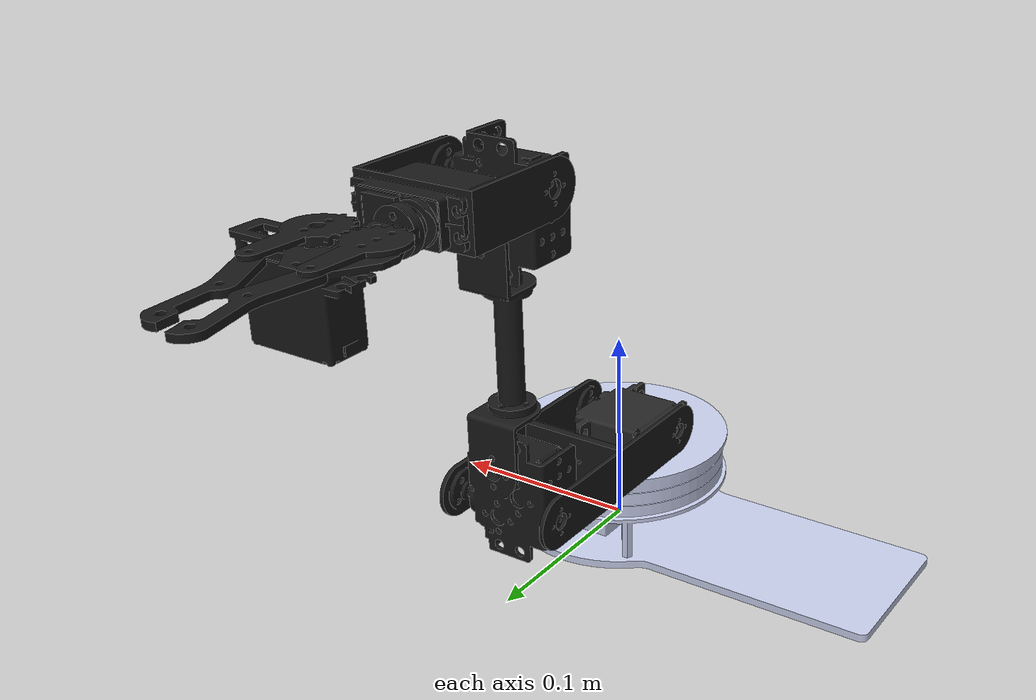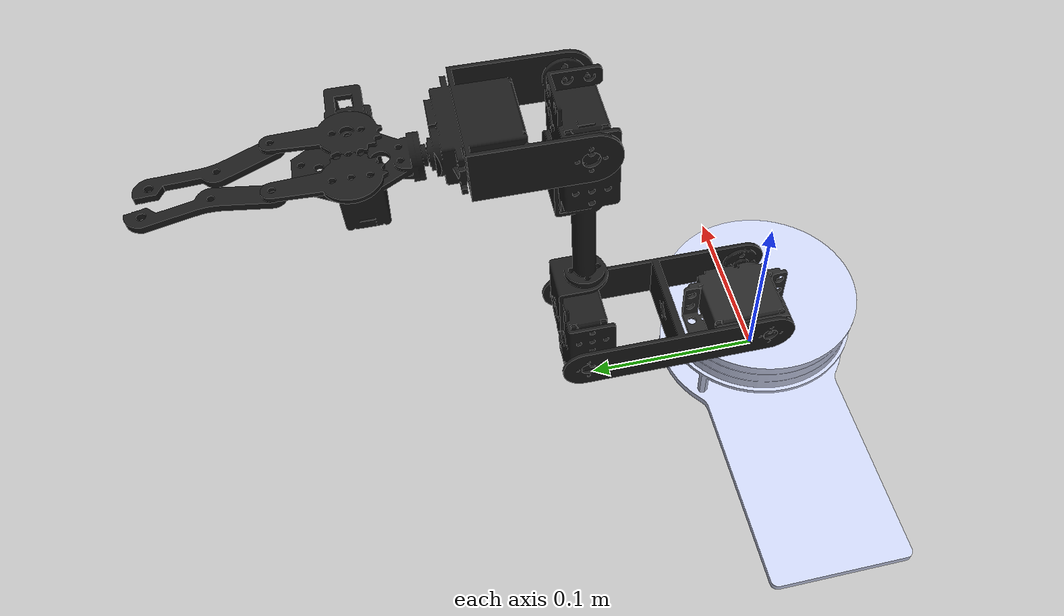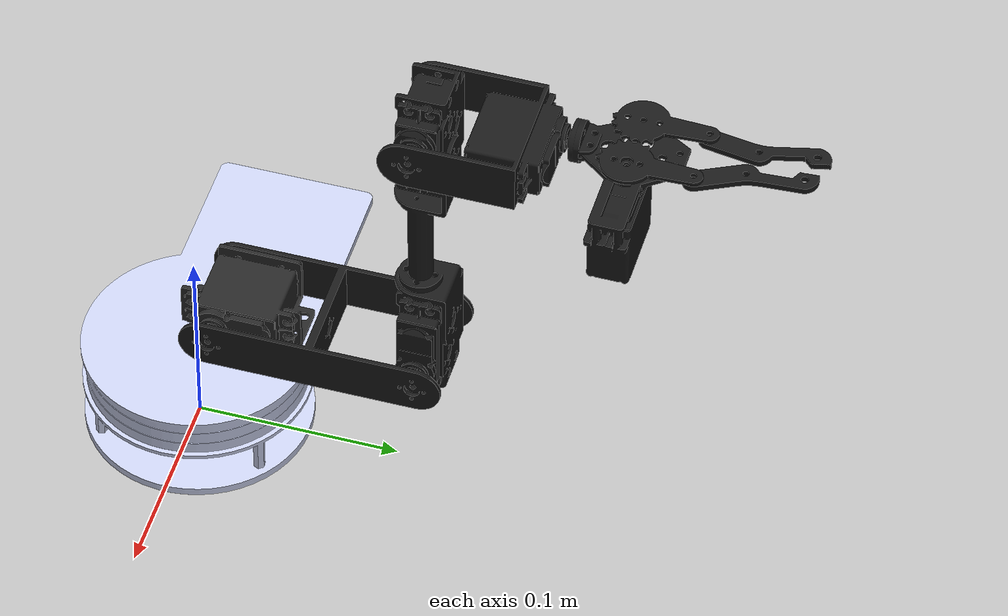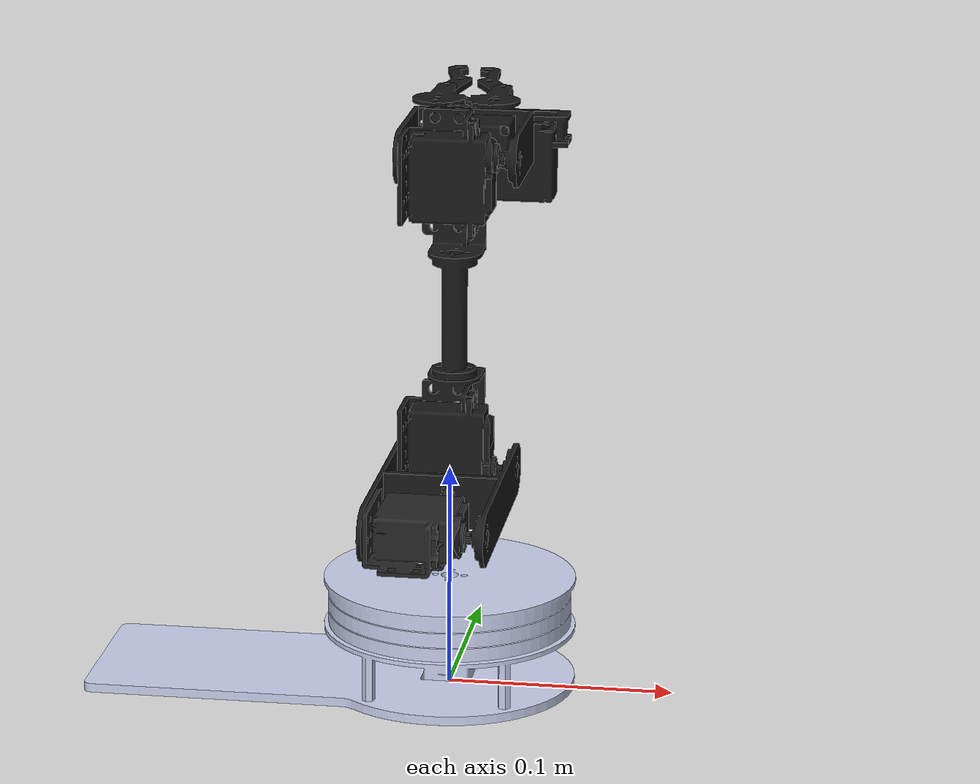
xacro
<?xml version="1.0"?>
<robot xmlns:xacro="http://www.ros.org/wiki/xacro" name="myrobot">
    <xacro:arg name="initial_positions_file" default="initial_positions.yaml" />

    <xacro:arg name="is_sim" default="false"/>

    <!-- Import myrobot urdf file -->
    <xacro:include filename="$(find myrobot_description)/urdf/myrobot.urdf.xacro" />

    <!-- Import control_xacro -->
    <xacro:include filename="myrobot.ros2_control.xacro" />

    <xacro:myrobot_ros2_control name="myrobot" initial_positions_file="$(arg initial_positions_file)"/>

</robot>

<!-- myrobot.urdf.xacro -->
<robot xmlns:xacro="http://www.ros.org/wiki/xacro" name="myrobot">

    <xacro:property name="PI" value="3.14159265359" />

    <xacro:macro name="default_transmission" params="number">
        <transmission name="transimission_${number}">
            <plugin>transmission_interface/SimpleTransmission</plugin>
            <actuator name="motor_${number}" role="actuator1" />
            <joint name="joint_${number}" role="joint1" >
                <mechanical_reduction>1.0</mechanical_reduction>
            </joint>
        </transmission>
    </xacro:macro>

    <link name="world"/>

    <link name="base_link">
        <inertial>
            <origin xyz="0 0 0" rpy="0 0 0" />
            <mass value="0.19" />
            <inertia ixx="1.0" ixy="0.0" ixz="0.0" iyy="1.0" iyz="0.0" izz="1.0" />
        </inertial>
        <visual>
            <origin xyz="0 0 0" rpy="-1.5708 0 0" />
            <geometry>
                <mesh filename="package://myrobot_description/meshes/base_link.STL" />
            </geometry>
            <material name="">
                <color rgba="0.79216 0.81961 0.93333 1" />
            </material>
        </visual>
        <collision>
            <origin xyz="0 0 0" rpy="-1.5708 0 0" />
            <geometry>
                <mesh filename="package://myrobot_description/meshes/base_link.STL" />
            </geometry>
        </collision>
    </link>

    <joint name="virtual_joint" type="fixed">
        <parent link="world"/>
        <child link="base_link"/>
        <origin xyz="0 0 0" rpy="0 0 0"/>
    </joint>

    <link name="link_1">
        <inertial>
            <origin xyz="0 0 0" rpy="0 0 0" />
            <mass value="0.05" />
            <inertia ixx="1.0" ixy="0.0" ixz="0.0" iyy="1.0" iyz="0.0" izz="1.0" />
        </inertial>
        <visual>
            <origin xyz="0 0 0" rpy="0 0 0" />
            <geometry>
                <mesh filename="package://myrobot_description/meshes/link1.STL" />
            </geometry>
            <material name="">
                <color rgba="0.15 0.15 0.15 1" />
            </material>
        </visual>
        <collision>
            <origin xyz="0 0 0" rpy="0 0 0" />
            <geometry>
                <mesh filename="package://myrobot_description/meshes/link1.STL" />
            </geometry>
        </collision>
    </link>

    <joint name="joint_1" type="revolute">
        <origin xyz="0 0 0.051" rpy="-3.14 0 1.5708" />
        <parent link="base_link" />
        <child link="link_1" />
        <axis xyz="0 0 -1" />
        <limit lower="0" upper="${PI}" effort="2000" velocity="6.28" />
    </joint>

    <link name="link_2">
        <inertial>
            <origin xyz="0 0 0" rpy="0 0 0" />
            <mass value="0.05" />
            <inertia ixx="1.0" ixy="0.0" ixz="0.0" iyy="1.0" iyz="0.0" izz="1.0" />
        </inertial>
        <visual>
            <origin xyz="0 0 0" rpy="0 0 0" />
            <geometry>
                <mesh filename="package://myrobot_description/meshes/link2.STL" />
            </geometry>
            <material name="">
                <color rgba="0.1 0.1 0.1 1" />
            </material>
        </visual>
        <collision>
            <origin xyz="0 0 0" rpy="0 0 0" />
            <geometry>
                <mesh filename="package://myrobot_description/meshes/link2.STL" />
            </geometry>
        </collision>
    </link>
    <joint name="joint_2" type="revolute">
        <origin xyz="0.01 0 -0.0133" rpy="1.5708 -1.5708 0" />
        <parent link="link_1" />
        <child link="link_2" />
        <axis xyz="0 0 -1" />
        <limit lower="0" upper="${PI}" effort="2000" velocity="6.28" />
    </joint>
    <link name="link_3">
        <inertial>
            <origin xyz="0 0 0" rpy="0 0 0" />
            <mass value="0.11" />
            <inertia ixx="1.0" ixy="0.0" ixz="0.0" iyy="1.0" iyz="0.0" izz="1.0" />
        </inertial>
        <visual>
            <origin xyz="0 0 0" rpy="0 0 0" />
            <geometry>
                <mesh filename="package://myrobot_description/meshes/link3.STL" />
            </geometry>
            <material name="">
                <color rgba="0.1 0.1 0.1 1" />
            </material>
        </visual>
        <collision>
            <origin xyz="0 0 0" rpy="0 0 0" />
            <geometry>
                <mesh filename="package://myrobot_description/meshes/link3.STL"/>
            </geometry>
        </collision>
    </link>
    <joint name="joint_3" type="revolute">
        <origin xyz="-0.0002 -0.1 0" rpy="-1.5708 0 -3.1416" />
        <parent link="link_2" />
        <child link="link_3" />
        <axis xyz="0 -1 0" />
        <limit lower="0" upper="${PI}" effort="2000" velocity="6.28" />
    </joint>
    <link name="link_4">
        <inertial>
            <origin xyz="0 0 0" rpy="0 0 0" />
            <mass value="0.05" />
            <inertia ixx="1.0" ixy="0.0" ixz="0.0" iyy="1.0" iyz="0.0" izz="1.0" />
        </inertial>
        <visual>
            <origin xyz="0 0 0" rpy="0 0 0" />
            <geometry>
                <mesh filename="package://myrobot_description/meshes/link4.STL" />
            </geometry>
            <material name="">
                <color rgba="0.1 0.1 0.1 1" />
            </material>
        </visual>
        <collision>
            <origin xyz="0 0 0" rpy="0 0 0" />
            <geometry>
                <mesh filename="package://myrobot_description/meshes/link4.STL" />
            </geometry>
        </collision>
    </link>
    <joint name="joint_4" type="revolute">
        <origin xyz="0.15 0 0" rpy="1.5708 0 1.5708" />
        <parent link="link_3" />
        <child link="link_4" />
        <axis xyz="1 0 0" />
        <limit lower="0" upper="${PI}" effort="2000" velocity="6.28" />
    </joint>

    <link name="link_5">
        <inertial>
            <origin xyz="0 0 0" rpy="0 0 0" />
            <mass value="0.04" />
            <inertia ixx="1.0" ixy="0.0" ixz="0.0" iyy="1.0" iyz="0.0" izz="1.0" />
        </inertial>
        <visual>
            <origin xyz="0 0 0" rpy="3.14 0 0" />
            <geometry>
                <mesh filename="package://myrobot_description/meshes/link5.STL" />
            </geometry>
            <material name="">
                <color rgba="0.1 0.1 0.1 1" />
            </material>
        </visual>
        <collision>
            <origin xyz="0 0 0" rpy="0 0 0" />
            <geometry>
                <mesh filename="package://myrobot_description/meshes/link5.STL" />
            </geometry>
        </collision>
    </link>
    <joint name="joint_5" type="revolute">
        <origin xyz="-0.02325 0.0668 0.00004" rpy="-1.5708 -1.5708 0" />
        <parent link="link_4" />
        <child link="link_5" />
        <axis xyz="0 0 1" />
        <limit lower="0" upper="${PI}" effort="2000" velocity="6.28" />
    </joint>
    <link name="link_6_1">
        <inertial>
            <origin xyz="0 0 0" rpy="0 0 0" />
            <mass value="0.004" />
            <inertia ixx="1.0" ixy="0.0" ixz="0.0" iyy="1.0" iyz="0.0" izz="1.0" />
        </inertial>
        <visual>
            <origin xyz="0 0 0" rpy="0 0 0" />
            <geometry>
                <mesh filename="package://myrobot_description/meshes/link6_1.STL" />
            </geometry>
            <material name="">
                <color rgba="0.1 0.1 0.1 1" />
            </material>
        </visual>
        <collision>
            <origin xyz="0 0 0" rpy="0 0 0" />
            <geometry>
                <mesh filename="package://myrobot_description/meshes/link6_1.STL"/>
            </geometry>
        </collision>
    </link>
    <joint name="joint_6" type="revolute">
        <origin xyz="0 0.0135 0.02957" rpy="-1.5708 0 -1.5708" />
        <parent link="link_5" />
        <child link="link_6_1" />
        <axis xyz="0 0 -1" />
        <limit lower="0" upper="${PI/3}" effort="2000" velocity="6.28" />
    </joint>
    <link name="link_7_1">
        <inertial>
            <origin xyz="0 0 0" rpy="0 0 0" />
            <mass value="0.002" />
            <inertia ixx="1.0" ixy="0.0" ixz="0.0" iyy="1.0" iyz="0.0" izz="1.0" />
        </inertial>
        <visual>
            <origin xyz="0 0 0" rpy="0 0 0" />
            <geometry>
                <mesh filename="package://myrobot_description/meshes/link7_1.STL" />
            </geometry>
            <material name="">
                <color rgba="0.1 0.1 0.1 1" />
            </material>
        </visual>
        <collision>
            <origin xyz="0 0 0" rpy="0 0 0" />
            <geometry>
                <mesh filename="package://myrobot_description/meshes/link7_1.STL" />
            </geometry>
        </collision>
    </link>
    <joint name="joint_7" type="continuous">
        <origin xyz="-0.000019564 -0.03105 -0.010482" rpy="0 0 3.2" />
        <parent link="link_6_1" />
        <child link="link_7_1" />
        <axis xyz="0 0 -1" />
        <limit lower="0" upper="0" effort="2000" velocity="6.28" />
        <mimic joint="joint_6" multiplier="-1" offset="0.0873" />
    </joint>
    <link name="link_6_2">
        <inertial>
            <origin xyz="0 0 0" rpy="0 0 0" />
            <mass value="0.002" />
            <inertia ixx="1.0" ixy="0.0" ixz="0.0" iyy="1.0" iyz="0.0" izz="1.0" />
        </inertial>
        <visual>
            <origin xyz="0 0 0" rpy="0 0 0" />
            <geometry>
                <mesh filename="package://myrobot_description/meshes/link6_2.STL" />
            </geometry>
            <material name="">
                <color rgba="0.1 0.1 0.1 1" />
            </material>
        </visual>
        <collision>
            <origin xyz="0 0 0" rpy="0 0 0" />
            <geometry>
                <mesh filename="package://myrobot_description/meshes/link6_2.STL" />
            </geometry>
        </collision>
    </link>
    <joint name="joint_8" type="continuous">
        <origin xyz="-0.0054227 -0.014 0.029946" rpy="-1.5708 0 1.5708" />
        <parent link="link_5" />
        <child link="link_6_2" />
        <axis xyz="0 0 1" />
        <limit lower="0" upper="0" effort="2000" velocity="6.28" />
        <mimic joint="joint_6" multiplier="-1" offset="0" />
    </joint>
    <link name="link_7_2">
        <inertial>
            <origin xyz="0 0 0" rpy="0 0 0" />
            <mass value="0.02" />
            <inertia ixx="1.0" ixy="0.0" ixz="0.0" iyy="1.0" iyz="0.0" izz="1.0" />
        </inertial>
        <visual>
            <origin xyz="0 0 0" rpy="0 0 0" />
            <geometry>
                <mesh filename="package://myrobot_description/meshes/link7_2.STL" />
            </geometry>
            <material name="">
                <color rgba="0.1 0.1 0.1 1" />
            </material>
        </visual>
        <collision>
            <origin xyz="0 0 0" rpy="0 0 0" />
            <geometry>
                <mesh filename="package://myrobot_description/meshes/link7_2.STL" />
            </geometry>
        </collision>
    </link>
    <joint name="joint_9" type="continuous">
        <origin xyz="-0.000019564 -0.031049 0.005427" rpy="0 0 2.9" />
        <parent link="link_6_2" />
        <child link="link_7_2" />
        <axis xyz="0 0 1" />
        <limit lower="0" upper="0" effort="2000" velocity="6.28" />
        <mimic joint="joint_7" multiplier="-1" offset="0.2618" />
    </joint>

    <xacro:default_transmission number = "1"/>
    <xacro:default_transmission number = "2"/>
    <xacro:default_transmission number = "3"/>
    <xacro:default_transmission number = "4"/>
    <xacro:default_transmission number = "5"/>
    <xacro:default_transmission number = "6"/>

</robot>
